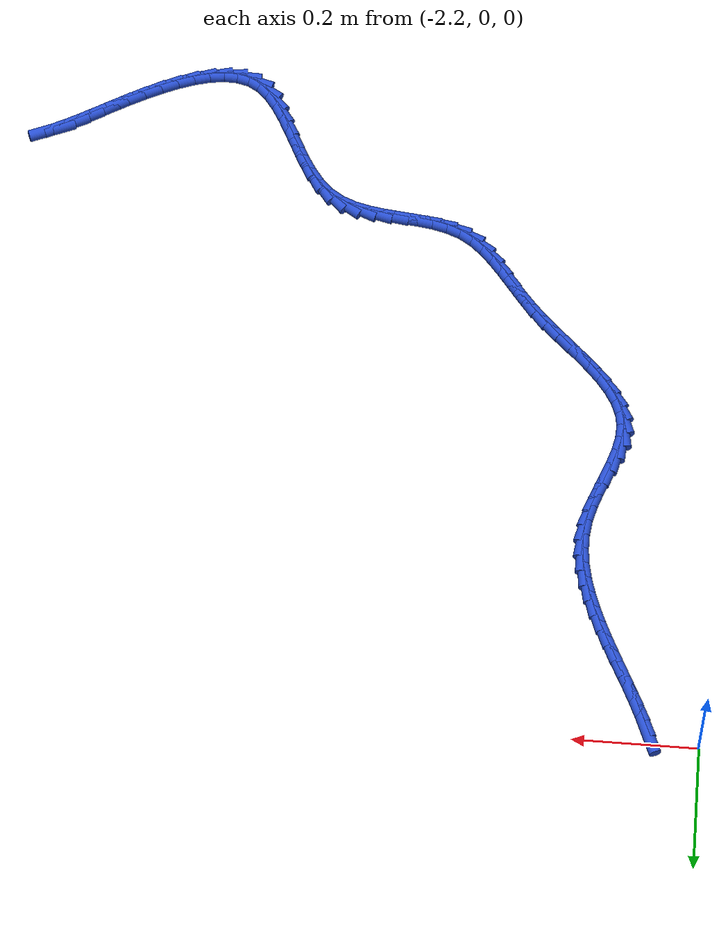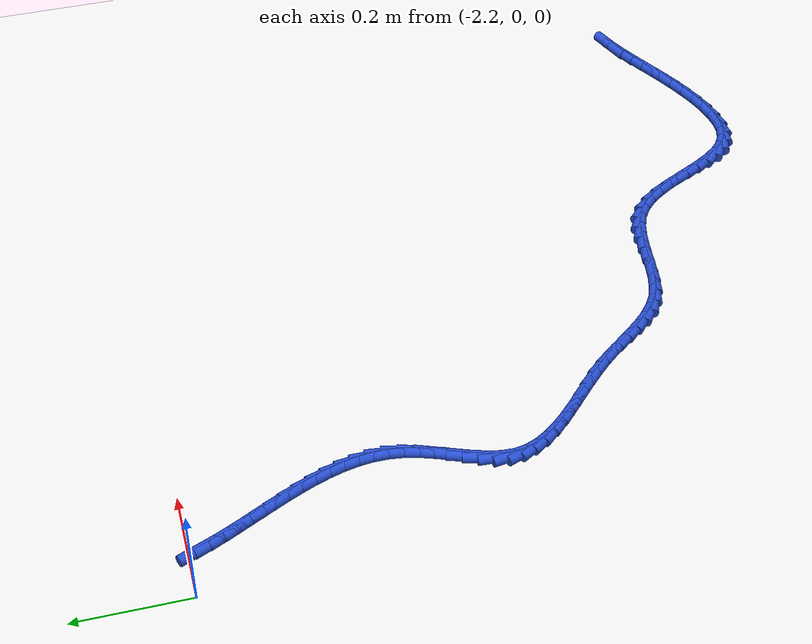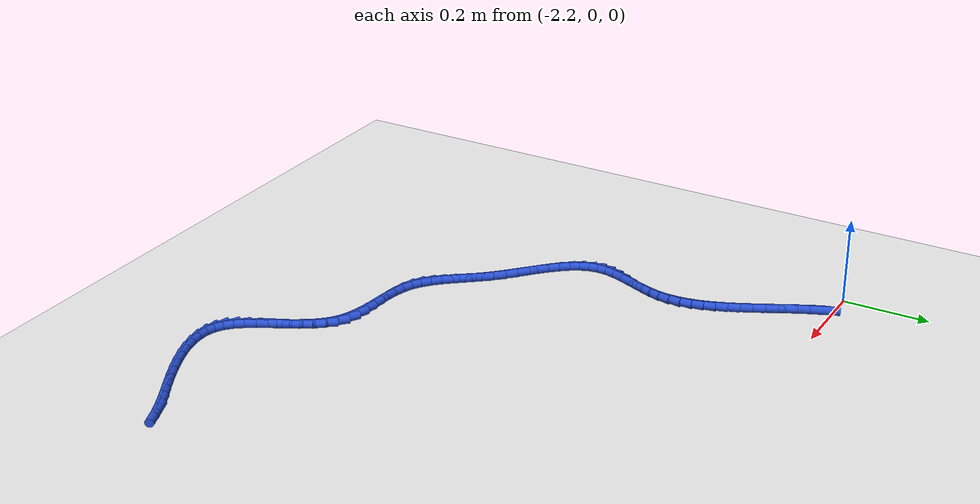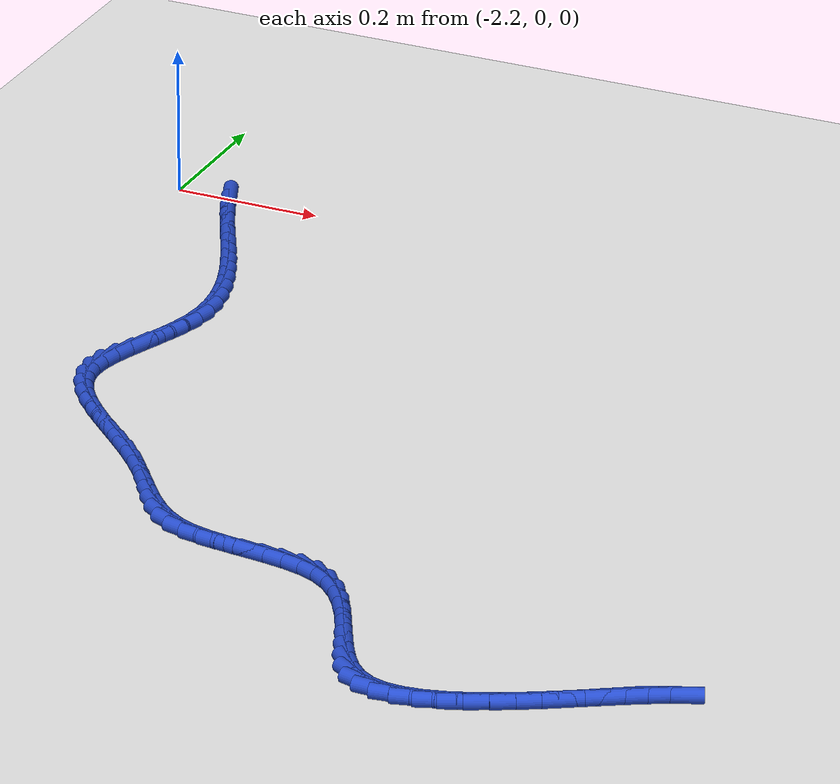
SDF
<sdf version="1.6">
 <world name="default">
  <model name="ground_plane">
   <static>1</static>
   <link name="link">
    <collision name="collision">
     <geometry><plane><normal>0 0 1</normal><size>100 100</size></plane></geometry>
     <surface><friction><ode><mu>100</mu><mu2>50</mu2></ode></friction></surface>
    </collision>
    <visual name="visual">
     <cast_shadows>0</cast_shadows>
     <geometry><plane><normal>0 0 1</normal><size>100 100</size></plane></geometry>
     <material>
      <script><uri>file://media/materials/scripts/gazebo.material</uri><name>Gazebo/WhiteGlow</name></script>
     </material>
    </visual>
   </link>
  </model>
  <model name="line">
   <link name="link_140">
    <pose>-2.116924587599653 -0.020144146588863748 0.01 0 1.57 -1.1843099101000896</pose>
    <collision name="collision">
     <geometry><cylinder><radius>0.01</radius><length>0.08</length></cylinder></geometry>
    </collision>
    <visual name="visual">
     <material>
      <script><name>Gazebo/Blue</name><uri>file://media/materials/scripts/gazebo.material</uri></script>
     </material>
     <geometry><cylinder><radius>0.01</radius><length>0.08</length></cylinder></geometry>
    </visual>
   </link>
   <link name="link_141">
    <pose>-2.106859874034109 -0.044875994419800114 0.01 0 1.57 -1.1458814302333045</pose>
    <collision name="collision">
     <geometry><cylinder><radius>0.01</radius><length>0.08</length></cylinder></geometry>
    </collision>
    <visual name="visual">
     <material>
      <script><name>Gazebo/Blue</name><uri>file://media/materials/scripts/gazebo.material</uri></script>
     </material>
     <geometry><cylinder><radius>0.01</radius><length>0.08</length></cylinder></geometry>
    </visual>
   </link>
   <link name="link_142">
    <pose>-2.095606106394811 -0.06974726429351123 0.01 0 1.57 -1.1209644793495743</pose>
    <collision name="collision">
     <geometry><cylinder><radius>0.01</radius><length>0.08</length></cylinder></geometry>
    </collision>
    <visual name="visual">
     <material>
      <script><name>Gazebo/Blue</name><uri>file://media/materials/scripts/gazebo.material</uri></script>
     </material>
     <geometry><cylinder><radius>0.01</radius><length>0.08</length></cylinder></geometry>
    </visual>
   </link>
   <link name="link_143">
    <pose>-2.0835325813447025 -0.0947520954850006 0.01 0 1.57 -1.1084954516282544</pose>
    <collision name="collision">
     <geometry><cylinder><radius>0.01</radius><length>0.08</length></cylinder></geometry>
    </collision>
    <visual name="visual">
     <material>
      <script><name>Gazebo/Blue</name><uri>file://media/materials/scripts/gazebo.material</uri></script>
     </material>
     <geometry><cylinder><radius>0.01</radius><length>0.08</length></cylinder></geometry>
    </visual>
   </link>
   <link name="link_144">
    <pose>-2.0710085955467266 -0.11988462726927149 0.01 0 1.57 -1.1078470090397563</pose>
    <collision name="collision">
     <geometry><cylinder><radius>0.01</radius><length>0.08</length></cylinder></geometry>
    </collision>
    <visual name="visual">
     <material>
      <script><name>Gazebo/Blue</name><uri>file://media/materials/scripts/gazebo.material</uri></script>
     </material>
     <geometry><cylinder><radius>0.01</radius><length>0.08</length></cylinder></geometry>
    </visual>
   </link>
   <link name="link_145">
    <pose>-2.0584034456638265 -0.1451389989213273 0.01 0 1.57 -1.1188250475977262</pose>
    <collision name="collision">
     <geometry><cylinder><radius>0.01</radius><length>0.08</length></cylinder></geometry>
    </collision>
    <visual name="visual">
     <material>
      <script><name>Gazebo/Blue</name><uri>file://media/materials/scripts/gazebo.material</uri></script>
     </material>
     <geometry><cylinder><radius>0.01</radius><length>0.08</length></cylinder></geometry>
    </visual>
   </link>
   <link name="link_146">
    <pose>-2.0460864283589455 -0.1705093497161722 0.01 0 1.57 -1.1416491543623437</pose>
    <collision name="collision">
     <geometry><cylinder><radius>0.01</radius><length>0.08</length></cylinder></geometry>
    </collision>
    <visual name="visual">
     <material>
      <script><name>Gazebo/Blue</name><uri>file://media/materials/scripts/gazebo.material</uri></script>
     </material>
     <geometry><cylinder><radius>0.01</radius><length>0.08</length></cylinder></geometry>
    </visual>
   </link>
   <link name="link_147">
    <pose>-2.0344268402950263 -0.195989818928808 0.01 0 1.57 -1.176919437674966</pose>
    <collision name="collision">
     <geometry><cylinder><radius>0.01</radius><length>0.08</length></cylinder></geometry>
    </collision>
    <visual name="visual">
     <material>
      <script><name>Gazebo/Blue</name><uri>file://media/materials/scripts/gazebo.material</uri></script>
     </material>
     <geometry><cylinder><radius>0.01</radius><length>0.08</length></cylinder></geometry>
    </visual>
   </link>
   <link name="link_148">
    <pose>-2.023793978135013 -0.2215745458342388 0.01 0 1.57 -1.2255539315403547</pose>
    <collision name="collision">
     <geometry><cylinder><radius>0.01</radius><length>0.08</length></cylinder></geometry>
    </collision>
    <visual name="visual">
     <material>
      <script><name>Gazebo/Blue</name><uri>file://media/materials/scripts/gazebo.material</uri></script>
     </material>
     <geometry><cylinder><radius>0.01</radius><length>0.08</length></cylinder></geometry>
    </visual>
   </link>
   <link name="link_149">
    <pose>-2.0145571385418473 -0.247257669707468 0.01 0 1.57 -1.2886613377516245</pose>
    <collision name="collision">
     <geometry><cylinder><radius>0.01</radius><length>0.08</length></cylinder></geometry>
    </collision>
    <visual name="visual">
     <material>
      <script><name>Gazebo/Blue</name><uri>file://media/materials/scripts/gazebo.material</uri></script>
     </material>
     <geometry><cylinder><radius>0.01</radius><length>0.08</length></cylinder></geometry>
    </visual>
   </link>
   <link name="link_150">
    <pose>-2.0070856181784733 -0.273033329823499 0.01 0 1.57 -1.367294675926565</pose>
    <collision name="collision">
     <geometry><cylinder><radius>0.01</radius><length>0.08</length></cylinder></geometry>
    </collision>
    <visual name="visual">
     <material>
      <script><name>Gazebo/Blue</name><uri>file://media/materials/scripts/gazebo.material</uri></script>
     </material>
     <geometry><cylinder><radius>0.01</radius><length>0.08</length></cylinder></geometry>
    </visual>
   </link>
   <link name="link_151">
    <pose>-2.001748713707834 -0.29889566545733515 0.01 0 1.57 -1.4620273085688147</pose>
    <collision name="collision">
     <geometry><cylinder><radius>0.01</radius><length>0.08</length></cylinder></geometry>
    </collision>
    <visual name="visual">
     <material>
      <script><name>Gazebo/Blue</name><uri>file://media/materials/scripts/gazebo.material</uri></script>
     </material>
     <geometry><cylinder><radius>0.01</radius><length>0.08</length></cylinder></geometry>
    </visual>
   </link>
   <link name="link_152">
    <pose>-1.9989157217928726 -0.3248388158839798 0.01 0 1.57 1.569250584996641</pose>
    <collision name="collision">
     <geometry><cylinder><radius>0.01</radius><length>0.08</length></cylinder></geometry>
    </collision>
    <visual name="visual">
     <material>
      <script><name>Gazebo/Blue</name><uri>file://media/materials/scripts/gazebo.material</uri></script>
     </material>
     <geometry><cylinder><radius>0.01</radius><length>0.08</length></cylinder></geometry>
    </visual>
   </link>
   <link name="link_153">
    <pose>-1.9989559390965317 -0.3508569203784363 0.01 0 1.57 1.4456209961095605</pose>
    <collision name="collision">
     <geometry><cylinder><radius>0.01</radius><length>0.08</length></cylinder></geometry>
    </collision>
    <visual name="visual">
     <material>
      <script><name>Gazebo/Blue</name><uri>file://media/materials/scripts/gazebo.material</uri></script>
     </material>
     <geometry><cylinder><radius>0.01</radius><length>0.08</length></cylinder></geometry>
    </visual>
   </link>
   <link name="link_154">
    <pose>-2.0022385746791587 -0.37694411002050837 0.01 0 1.57 1.3245726861424756</pose>
    <collision name="collision">
     <geometry><cylinder><radius>0.01</radius><length>0.08</length></cylinder></geometry>
    </collision>
    <visual name="visual">
     <material>
      <script><name>Gazebo/Blue</name><uri>file://media/materials/scripts/gazebo.material</uri></script>
     </material>
     <geometry><cylinder><radius>0.01</radius><length>0.08</length></cylinder></geometry>
    </visual>
   </link>
   <link name="link_155">
    <pose>-2.0088030240754997 -0.4030636619221005 0.01 0 1.57 1.2442300955450747</pose>
    <collision name="collision">
     <geometry><cylinder><radius>0.01</radius><length>0.08</length></cylinder></geometry>
    </collision>
    <visual name="visual">
     <material>
      <script><name>Gazebo/Blue</name><uri>file://media/materials/scripts/gazebo.material</uri></script>
     </material>
     <geometry><cylinder><radius>0.01</radius><length>0.08</length></cylinder></geometry>
    </visual>
   </link>
   <link name="link_156">
    <pose>-2.0176139985408867 -0.4290783167656298 0.01 0 1.57 1.2070420112518037</pose>
    <collision name="collision">
     <geometry><cylinder><radius>0.01</radius><length>0.08</length></cylinder></geometry>
    </collision>
    <visual name="visual">
     <material>
      <script><name>Gazebo/Blue</name><uri>file://media/materials/scripts/gazebo.material</uri></script>
     </material>
     <geometry><cylinder><radius>0.01</radius><length>0.08</length></cylinder></geometry>
    </visual>
   </link>
   <link name="link_157">
    <pose>-2.0274176813551166 -0.45483037199932697 0.01 0 1.57 1.2105325163471943</pose>
    <collision name="collision">
     <geometry><cylinder><radius>0.01</radius><length>0.08</length></cylinder></geometry>
    </collision>
    <visual name="visual">
     <material>
      <script><name>Gazebo/Blue</name><uri>file://media/materials/scripts/gazebo.material</uri></script>
     </material>
     <geometry><cylinder><radius>0.01</radius><length>0.08</length></cylinder></geometry>
    </visual>
   </link>
   <link name="link_158">
    <pose>-2.0369602557979865 -0.48016212507142225 0.01 0 1.57 1.2571973638314067</pose>
    <collision name="collision">
     <geometry><cylinder><radius>0.01</radius><length>0.08</length></cylinder></geometry>
    </collision>
    <visual name="visual">
     <material>
      <script><name>Gazebo/Blue</name><uri>file://media/materials/scripts/gazebo.material</uri></script>
     </material>
     <geometry><cylinder><radius>0.01</radius><length>0.08</length></cylinder></geometry>
    </visual>
   </link>
   <link name="link_159">
    <pose>-2.044987905149293 -0.5049158734301454 0.01 0 1.57 1.3552415130608924</pose>
    <collision name="collision">
     <geometry><cylinder><radius>0.01</radius><length>0.08</length></cylinder></geometry>
    </collision>
    <visual name="visual">
     <material>
      <script><name>Gazebo/Blue</name><uri>file://media/materials/scripts/gazebo.material</uri></script>
     </material>
     <geometry><cylinder><radius>0.01</radius><length>0.08</length></cylinder></geometry>
    </visual>
   </link>
   <link name="link_160">
    <pose>-2.050246812688834 -0.5289339145237267 0.01 0 1.57 1.5173825884359322</pose>
    <collision name="collision">
     <geometry><cylinder><radius>0.01</radius><length>0.08</length></cylinder></geometry>
    </collision>
    <visual name="visual">
     <material>
      <script><name>Gazebo/Blue</name><uri>file://media/materials/scripts/gazebo.material</uri></script>
     </material>
     <geometry><cylinder><radius>0.01</radius><length>0.08</length></cylinder></geometry>
    </visual>
   </link>
   <link name="link_161">
    <pose>-2.0514831616964067 -0.5520585458003965 0.01 0 1.57 -1.4044266815169817</pose>
    <collision name="collision">
     <geometry><cylinder><radius>0.01</radius><length>0.08</length></cylinder></geometry>
    </collision>
    <visual name="visual">
     <material>
      <script><name>Gazebo/Blue</name><uri>file://media/materials/scripts/gazebo.material</uri></script>
     </material>
     <geometry><cylinder><radius>0.01</radius><length>0.08</length></cylinder></geometry>
    </visual>
   </link>
   <link name="link_162">
    <pose>-2.047766957267258 -0.5741891106752371 0.01 0 1.57 -1.1987035757381943</pose>
    <collision name="collision">
     <geometry><cylinder><radius>0.01</radius><length>0.08</length></cylinder></geometry>
    </collision>
    <visual name="visual">
     <material>
      <script><name>Gazebo/Blue</name><uri>file://media/materials/scripts/gazebo.material</uri></script>
     </material>
     <geometry><cylinder><radius>0.01</radius><length>0.08</length></cylinder></geometry>
    </visual>
   </link>
   <link name="link_163">
    <pose>-2.0394678863627727 -0.5954539106048147 0.01 0 1.57 -1.0362783756006084</pose>
    <collision name="collision">
     <geometry><cylinder><radius>0.01</radius><length>0.08</length></cylinder></geometry>
    </collision>
    <visual name="visual">
     <material>
      <script><name>Gazebo/Blue</name><uri>file://media/materials/scripts/gazebo.material</uri></script>
     </material>
     <geometry><cylinder><radius>0.01</radius><length>0.08</length></cylinder></geometry>
    </visual>
   </link>
   <link name="link_164">
    <pose>-2.0272816587868387 -0.6160386807557772 0.01 0 1.57 -0.9174985285024179</pose>
    <collision name="collision">
     <geometry><cylinder><radius>0.01</radius><length>0.08</length></cylinder></geometry>
    </collision>
    <visual name="visual">
     <material>
      <script><name>Gazebo/Blue</name><uri>file://media/materials/scripts/gazebo.material</uri></script>
     </material>
     <geometry><cylinder><radius>0.01</radius><length>0.08</length></cylinder></geometry>
    </visual>
   </link>
   <link name="link_165">
    <pose>-2.0119039843438165 -0.6361291562948539 0.01 0 1.57 -0.8360383522564779</pose>
    <collision name="collision">
     <geometry><cylinder><radius>0.01</radius><length>0.08</length></cylinder></geometry>
    </collision>
    <visual name="visual">
     <material>
      <script><name>Gazebo/Blue</name><uri>file://media/materials/scripts/gazebo.material</uri></script>
     </material>
     <geometry><cylinder><radius>0.01</radius><length>0.08</length></cylinder></geometry>
    </visual>
   </link>
   <link name="link_166">
    <pose>-1.9940305728380647 -0.6559110723887761 0.01 0 1.57 -0.7850334030380723</pose>
    <collision name="collision">
     <geometry><cylinder><radius>0.01</radius><length>0.08</length></cylinder></geometry>
    </collision>
    <visual name="visual">
     <material>
      <script><name>Gazebo/Blue</name><uri>file://media/materials/scripts/gazebo.material</uri></script>
     </material>
     <geometry><cylinder><radius>0.01</radius><length>0.08</length></cylinder></geometry>
    </visual>
   </link>
   <link name="link_167">
    <pose>-1.9743571340739414 -0.6755701642042737 0.01 0 1.57 -0.7593359226632841</pose>
    <collision name="collision">
     <geometry><cylinder><radius>0.01</radius><length>0.08</length></cylinder></geometry>
    </collision>
    <visual name="visual">
     <material>
      <script><name>Gazebo/Blue</name><uri>file://media/materials/scripts/gazebo.material</uri></script>
     </material>
     <geometry><cylinder><radius>0.01</radius><length>0.08</length></cylinder></geometry>
    </visual>
   </link>
   <link name="link_168">
    <pose>-1.9535793778558037 -0.6952921669080769 0.01 0 1.57 -0.7558682816750472</pose>
    <collision name="collision">
     <geometry><cylinder><radius>0.01</radius><length>0.08</length></cylinder></geometry>
    </collision>
    <visual name="visual">
     <material>
      <script><name>Gazebo/Blue</name><uri>file://media/materials/scripts/gazebo.material</uri></script>
     </material>
     <geometry><cylinder><radius>0.01</radius><length>0.08</length></cylinder></geometry>
    </visual>
   </link>
   <link name="link_169">
    <pose>-1.9323930139880106 -0.7152628156669164 0.01 0 1.57 -0.7734331077861696</pose>
    <collision name="collision">
     <geometry><cylinder><radius>0.01</radius><length>0.08</length></cylinder></geometry>
    </collision>
    <visual name="visual">
     <material>
      <script><name>Gazebo/Blue</name><uri>file://media/materials/scripts/gazebo.material</uri></script>
     </material>
     <geometry><cylinder><radius>0.01</radius><length>0.08</length></cylinder></geometry>
    </visual>
   </link>
   <link name="link_170">
    <pose>-1.9114937522749207 -0.7356678456475223 0.01 0 1.57 -0.8124715026888439</pose>
    <collision name="collision">
     <geometry><cylinder><radius>0.01</radius><length>0.08</length></cylinder></geometry>
    </collision>
    <visual name="visual">
     <material>
      <script><name>Gazebo/Blue</name><uri>file://media/materials/scripts/gazebo.material</uri></script>
     </material>
     <geometry><cylinder><radius>0.01</radius><length>0.08</length></cylinder></geometry>
    </visual>
   </link>
   <link name="link_171">
    <pose>-1.891577302520892 -0.7566929920166248 0.01 0 1.57 -0.8675885991762724</pose>
    <collision name="collision">
     <geometry><cylinder><radius>0.01</radius><length>0.08</length></cylinder></geometry>
    </collision>
    <visual name="visual">
     <material>
      <script><name>Gazebo/Blue</name><uri>file://media/materials/scripts/gazebo.material</uri></script>
     </material>
     <geometry><cylinder><radius>0.01</radius><length>0.08</length></cylinder></geometry>
    </visual>
   </link>
   <link name="link_172">
    <pose>-1.8731661817268386 -0.7784096817319225 0.01 0 1.57 -0.9039009746236367</pose>
    <collision name="collision">
     <geometry><cylinder><radius>0.01</radius><length>0.08</length></cylinder></geometry>
    </collision>
    <visual name="visual">
     <material>
      <script><name>Gazebo/Blue</name><uri>file://media/materials/scripts/gazebo.material</uri></script>
     </material>
     <geometry><cylinder><radius>0.01</radius><length>0.08</length></cylinder></geometry>
    </visual>
   </link>
   <link name="link_173">
    <pose>-1.8559188367353698 -0.8003190506633241 0.01 0 1.57 -0.9088920725525416</pose>
    <collision name="collision">
     <geometry><cylinder><radius>0.01</radius><length>0.08</length></cylinder></geometry>
    </collision>
    <visual name="visual">
     <material>
      <script><name>Gazebo/Blue</name><uri>file://media/materials/scripts/gazebo.material</uri></script>
     </material>
     <geometry><cylinder><radius>0.01</radius><length>0.08</length></cylinder></geometry>
    </visual>
   </link>
   <link name="link_174">
    <pose>-1.839224782978542 -0.8217447384610236 0.01 0 1.57 -0.8800509526377707</pose>
    <collision name="collision">
     <geometry><cylinder><radius>0.01</radius><length>0.08</length></cylinder></geometry>
    </collision>
    <visual name="visual">
     <material>
      <script><name>Gazebo/Blue</name><uri>file://media/materials/scripts/gazebo.material</uri></script>
     </material>
     <geometry><cylinder><radius>0.01</radius><length>0.08</length></cylinder></geometry>
    </visual>
   </link>
   <link name="link_175">
    <pose>-1.822473449713568 -0.842010327899344 0.01 0 1.57 -0.8135619677875251</pose>
    <collision name="collision">
     <geometry><cylinder><radius>0.01</radius><length>0.08</length></cylinder></geometry>
    </collision>
    <visual name="visual">
     <material>
      <script><name>Gazebo/Blue</name><uri>file://media/materials/scripts/gazebo.material</uri></script>
     </material>
     <geometry><cylinder><radius>0.01</radius><length>0.08</length></cylinder></geometry>
    </visual>
   </link>
   <link name="link_176">
    <pose>-1.8050542661976599 -0.8604394017526075 0.01 0 1.57 -0.705213265261377</pose>
    <collision name="collision">
     <geometry><cylinder><radius>0.01</radius><length>0.08</length></cylinder></geometry>
    </collision>
    <visual name="visual">
     <material>
      <script><name>Gazebo/Blue</name><uri>file://media/materials/scripts/gazebo.material</uri></script>
     </material>
     <geometry><cylinder><radius>0.01</radius><length>0.08</length></cylinder></geometry>
    </visual>
   </link>
   <link name="link_177">
    <pose>-1.786356661688032 -0.8763555427951365 0.01 0 1.57 -0.5537000017337284</pose>
    <collision name="collision">
     <geometry><cylinder><radius>0.01</radius><length>0.08</length></cylinder></geometry>
    </collision>
    <visual name="visual">
     <material>
      <script><name>Gazebo/Blue</name><uri>file://media/materials/scripts/gazebo.material</uri></script>
     </material>
     <geometry><cylinder><radius>0.01</radius><length>0.08</length></cylinder></geometry>
    </visual>
   </link>
   <link name="link_178">
    <pose>-1.7657700654418975 -0.889082333801253 0.01 0 1.57 -0.37482374110957295</pose>
    <collision name="collision">
     <geometry><cylinder><radius>0.01</radius><length>0.08</length></cylinder></geometry>
    </collision>
    <visual name="visual">
     <material>
      <script><name>Gazebo/Blue</name><uri>file://media/materials/scripts/gazebo.material</uri></script>
     </material>
     <geometry><cylinder><radius>0.01</radius><length>0.08</length></cylinder></geometry>
    </visual>
   </link>
   <link name="link_179">
    <pose>-1.7428101472089272 -0.898115294200619 0.01 0 1.57 -0.23342235786094598</pose>
    <collision name="collision">
     <geometry><cylinder><radius>0.01</radius><length>0.08</length></cylinder></geometry>
    </collision>
    <visual name="visual">
     <material>
      <script><name>Gazebo/Blue</name><uri>file://media/materials/scripts/gazebo.material</uri></script>
     </material>
     <geometry><cylinder><radius>0.01</radius><length>0.08</length></cylinder></geometry>
    </visual>
   </link>
   <link name="link_180">
    <pose>-1.7178074873230191 -0.9040598329482306 0.01 0 1.57 -0.14680216672629712</pose>
    <collision name="collision">
     <geometry><cylinder><radius>0.01</radius><length>0.08</length></cylinder></geometry>
    </collision>
    <visual name="visual">
     <material>
      <script><name>Gazebo/Blue</name><uri>file://media/materials/scripts/gazebo.material</uri></script>
     </material>
     <geometry><cylinder><radius>0.01</radius><length>0.08</length></cylinder></geometry>
    </visual>
   </link>
   <link name="link_181">
    <pose>-1.691416332410643 -0.9079621850661213 0.01 0 1.57 -0.10678353407797177</pose>
    <collision name="collision">
     <geometry><cylinder><radius>0.01</radius><length>0.08</length></cylinder></geometry>
    </collision>
    <visual name="visual">
     <material>
      <script><name>Gazebo/Blue</name><uri>file://media/materials/scripts/gazebo.material</uri></script>
     </material>
     <geometry><cylinder><radius>0.01</radius><length>0.08</length></cylinder></geometry>
    </visual>
   </link>
   <link name="link_182">
    <pose>-1.6642917498841596 -0.9108697034678773 0.01 0 1.57 -0.10838670474836402</pose>
    <collision name="collision">
     <geometry><cylinder><radius>0.01</radius><length>0.08</length></cylinder></geometry>
    </collision>
    <visual name="visual">
     <material>
      <script><name>Gazebo/Blue</name><uri>file://media/materials/scripts/gazebo.material</uri></script>
     </material>
     <geometry><cylinder><radius>0.01</radius><length>0.08</length></cylinder></geometry>
    </visual>
   </link>
   <link name="link_183">
    <pose>-1.6370888071559258 -0.9138297410670853 0.01 0 1.57 -0.15131233482629494</pose>
    <collision name="collision">
     <geometry><cylinder><radius>0.01</radius><length>0.08</length></cylinder></geometry>
    </collision>
    <visual name="visual">
     <material>
      <script><name>Gazebo/Blue</name><uri>file://media/materials/scripts/gazebo.material</uri></script>
     </material>
     <geometry><cylinder><radius>0.01</radius><length>0.08</length></cylinder></geometry>
    </visual>
   </link>
   <link name="link_184">
    <pose>-1.6104625716382996 -0.9178896507773311 0.01 0 1.57 -0.23972823988811684</pose>
    <collision name="collision">
     <geometry><cylinder><radius>0.01</radius><length>0.08</length></cylinder></geometry>
    </collision>
    <visual name="visual">
     <material>
      <script><name>Gazebo/Blue</name><uri>file://media/materials/scripts/gazebo.material</uri></script>
     </material>
     <geometry><cylinder><radius>0.01</radius><length>0.08</length></cylinder></geometry>
    </visual>
   </link>
   <link name="link_185">
    <pose>-1.585068110743639 -0.924096785512201 0.01 0 1.57 -0.3804574239154289</pose>
    <collision name="collision">
     <geometry><cylinder><radius>0.01</radius><length>0.08</length></cylinder></geometry>
    </collision>
    <visual name="visual">
     <material>
      <script><name>Gazebo/Blue</name><uri>file://media/materials/scripts/gazebo.material</uri></script>
     </material>
     <geometry><cylinder><radius>0.01</radius><length>0.08</length></cylinder></geometry>
    </visual>
   </link>
   <link name="link_186">
    <pose>-1.5615604918843031 -0.933498498185282 0.01 0 1.57 -0.5761580086915304</pose>
    <collision name="collision">
     <geometry><cylinder><radius>0.01</radius><length>0.08</length></cylinder></geometry>
    </collision>
    <visual name="visual">
     <material>
      <script><name>Gazebo/Blue</name><uri>file://media/materials/scripts/gazebo.material</uri></script>
     </material>
     <geometry><cylinder><radius>0.01</radius><length>0.08</length></cylinder></geometry>
    </visual>
   </link>
   <link name="link_187">
    <pose>-1.5405853939223049 -0.9471258318072401 0.01 0 1.57 -0.7797769756939169</pose>
    <collision name="collision">
     <geometry><cylinder><radius>0.01</radius><length>0.08</length></cylinder></geometry>
    </collision>
    <visual name="visual">
     <material>
      <script><name>Gazebo/Blue</name><uri>file://media/materials/scripts/gazebo.material</uri></script>
     </material>
     <geometry><cylinder><radius>0.01</radius><length>0.08</length></cylinder></geometry>
    </visual>
   </link>
   <link name="link_188">
    <pose>-1.5223167249256824 -0.9651902634740309 0.01 0 1.57 -0.9294873721788075</pose>
    <collision name="collision">
     <geometry><cylinder><radius>0.01</radius><length>0.08</length></cylinder></geometry>
    </collision>
    <visual name="visual">
     <material>
      <script><name>Gazebo/Blue</name><uri>file://media/materials/scripts/gazebo.material</uri></script>
     </material>
     <geometry><cylinder><radius>0.01</radius><length>0.08</length></cylinder></geometry>
    </visual>
   </link>
   <link name="link_189">
    <pose>-1.5062454261562475 -0.9867168121065701 0.01 0 1.57 -1.027800750272645</pose>
    <collision name="collision">
     <geometry><cylinder><radius>0.01</radius><length>0.08</length></cylinder></geometry>
    </collision>
    <visual name="visual">
     <material>
      <script><name>Gazebo/Blue</name><uri>file://media/materials/scripts/gazebo.material</uri></script>
     </material>
     <geometry><cylinder><radius>0.01</radius><length>0.08</length></cylinder></geometry>
    </visual>
   </link>
   <link name="link_190">
    <pose>-1.4918089904759686 -1.010637645420768 0.01 0 1.57 -1.0839630045205835</pose>
    <collision name="collision">
     <geometry><cylinder><radius>0.01</radius><length>0.08</length></cylinder></geometry>
    </collision>
    <visual name="visual">
     <material>
      <script><name>Gazebo/Blue</name><uri>file://media/materials/scripts/gazebo.material</uri></script>
     </material>
     <geometry><cylinder><radius>0.01</radius><length>0.08</length></cylinder></geometry>
    </visual>
   </link>
   <link name="link_191">
    <pose>-1.4784449107468165 -1.0358849311325324 0.01 0 1.57 -1.1039771524430384</pose>
    <collision name="collision">
     <geometry><cylinder><radius>0.01</radius><length>0.08</length></cylinder></geometry>
    </collision>
    <visual name="visual">
     <material>
      <script><name>Gazebo/Blue</name><uri>file://media/materials/scripts/gazebo.material</uri></script>
     </material>
     <geometry><cylinder><radius>0.01</radius><length>0.08</length></cylinder></geometry>
    </visual>
   </link>
   <link name="link_192">
    <pose>-1.4655906798307594 -1.0613908369577747 0.01 0 1.57 -1.0892199830452332</pose>
    <collision name="collision">
     <geometry><cylinder><radius>0.01</radius><length>0.08</length></cylinder></geometry>
    </collision>
    <visual name="visual">
     <material>
      <script><name>Gazebo/Blue</name><uri>file://media/materials/scripts/gazebo.material</uri></script>
     </material>
     <geometry><cylinder><radius>0.01</radius><length>0.08</length></cylinder></geometry>
    </visual>
   </link>
   <link name="link_193">
    <pose>-1.4526837905897672 -1.0860875306124038 0.01 0 1.57 -1.035863968406905</pose>
    <collision name="collision">
     <geometry><cylinder><radius>0.01</radius><length>0.08</length></cylinder></geometry>
    </collision>
    <visual name="visual">
     <material>
      <script><name>Gazebo/Blue</name><uri>file://media/materials/scripts/gazebo.material</uri></script>
     </material>
     <geometry><cylinder><radius>0.01</radius><length>0.08</length></cylinder></geometry>
    </visual>
   </link>
   <link name="link_194">
    <pose>-1.4391617358858084 -1.10890717981233 0.01 0 1.57 -0.9339732716807818</pose>
    <collision name="collision">
     <geometry><cylinder><radius>0.01</radius><length>0.08</length></cylinder></geometry>
    </collision>
    <visual name="visual">
     <material>
      <script><name>Gazebo/Blue</name><uri>file://media/materials/scripts/gazebo.material</uri></script>
     </material>
     <geometry><cylinder><radius>0.01</radius><length>0.08</length></cylinder></geometry>
    </visual>
   </link>
   <link name="link_195">
    <pose>-1.424462008580853 -1.1287819522734626 0.01 0 1.57 -0.7675112676291928</pose>
    <collision name="collision">
     <geometry><cylinder><radius>0.01</radius><length>0.08</length></cylinder></geometry>
    </collision>
    <visual name="visual">
     <material>
      <script><name>Gazebo/Blue</name><uri>file://media/materials/scripts/gazebo.material</uri></script>
     </material>
     <geometry><cylinder><radius>0.01</radius><length>0.08</length></cylinder></geometry>
    </visual>
   </link>
   <link name="link_196">
    <pose>-1.4080221015368695 -1.144644015711712 0.01 0 1.57 -0.5233315372946078</pose>
    <collision name="collision">
     <geometry><cylinder><radius>0.01</radius><length>0.08</length></cylinder></geometry>
    </collision>
    <visual name="visual">
     <material>
      <script><name>Gazebo/Blue</name><uri>file://media/materials/scripts/gazebo.material</uri></script>
     </material>
     <geometry><cylinder><radius>0.01</radius><length>0.08</length></cylinder></geometry>
    </visual>
   </link>
   <link name="link_197">
    <pose>-1.3892936358550294 -1.1554502281594023 0.01 0 1.57 -0.25285700365248687</pose>
    <collision name="collision">
     <geometry><cylinder><radius>0.01</radius><length>0.08</length></cylinder></geometry>
    </collision>
    <visual name="visual">
     <material>
      <script><name>Gazebo/Blue</name><uri>file://media/materials/scripts/gazebo.material</uri></script>
     </material>
     <geometry><cylinder><radius>0.01</radius><length>0.08</length></cylinder></geometry>
    </visual>
   </link>
   <link name="link_198">
    <pose>-1.3681594494766693 -1.1609110362649155 0.01 0 1.57 -0.03021146007965573</pose>
    <collision name="collision">
     <geometry><cylinder><radius>0.01</radius><length>0.08</length></cylinder></geometry>
    </collision>
    <visual name="visual">
     <material>
      <script><name>Gazebo/Blue</name><uri>file://media/materials/scripts/gazebo.material</uri></script>
     </material>
     <geometry><cylinder><radius>0.01</radius><length>0.08</length></cylinder></geometry>
    </visual>
   </link>
   <link name="link_199">
    <pose>-1.3450024806171803 -1.1616108550338728 0.01 0 1.57 0.1375192110313337</pose>
    <collision name="collision">
     <geometry><cylinder><radius>0.01</radius><length>0.08</length></cylinder></geometry>
    </collision>
    <visual name="visual">
     <material>
      <script><name>Gazebo/Blue</name><uri>file://media/materials/scripts/gazebo.material</uri></script>
     </material>
     <geometry><cylinder><radius>0.01</radius><length>0.08</length></cylinder></geometry>
    </visual>
   </link>
   <link name="link_200">
    <pose>-1.3202336673366672 -1.1581830316152186 0.01 0 1.57 0.26048950143779764</pose>
    <collision name="collision">
     <geometry><cylinder><radius>0.01</radius><length>0.08</length></cylinder></geometry>
    </collision>
    <visual name="visual">
     <material>
      <script><name>Gazebo/Blue</name><uri>file://media/materials/scripts/gazebo.material</uri></script>
     </material>
     <geometry><cylinder><radius>0.01</radius><length>0.08</length></cylinder></geometry>
    </visual>
   </link>
   <link name="link_201">
    <pose>-1.2942639476952327 -1.1512609131578972 0.01 0 1.57 0.3504951317173672</pose>
    <collision name="collision">
     <geometry><cylinder><radius>0.01</radius><length>0.08</length></cylinder></geometry>
    </collision>
    <visual name="visual">
     <material>
      <script><name>Gazebo/Blue</name><uri>file://media/materials/scripts/gazebo.material</uri></script>
     </material>
     <geometry><cylinder><radius>0.01</radius><length>0.08</length></cylinder></geometry>
    </visual>
   </link>
   <link name="link_202">
    <pose>-1.2675042597529798 -1.141477846810853 0.01 0 1.57 0.41665442712837597</pose>
    <collision name="collision">
     <geometry><cylinder><radius>0.01</radius><length>0.08</length></cylinder></geometry>
    </collision>
    <visual name="visual">
     <material>
      <script><name>Gazebo/Blue</name><uri>file://media/materials/scripts/gazebo.material</uri></script>
     </material>
     <geometry><cylinder><radius>0.01</radius><length>0.08</length></cylinder></geometry>
    </visual>
   </link>
   <link name="link_203">
    <pose>-1.240365541570013 -1.1294671797230302 0.01 0 1.57 0.46516682357447986</pose>
    <collision name="collision">
     <geometry><cylinder><radius>0.01</radius><length>0.08</length></cylinder></geometry>
    </collision>
    <visual name="visual">
     <material>
      <script><name>Gazebo/Blue</name><uri>file://media/materials/scripts/gazebo.material</uri></script>
     </material>
     <geometry><cylinder><radius>0.01</radius><length>0.08</length></cylinder></geometry>
    </visual>
   </link>
   <link name="link_204">
    <pose>-1.2132587312064345 -1.1158622590433729 0.01 0 1.57 0.49997795969683007</pose>
    <collision name="collision">
     <geometry><cylinder><radius>0.01</radius><length>0.08</length></cylinder></geometry>
    </collision>
    <visual name="visual">
     <material>
      <script><name>Gazebo/Blue</name><uri>file://media/materials/scripts/gazebo.material</uri></script>
     </material>
     <geometry><cylinder><radius>0.01</radius><length>0.08</length></cylinder></geometry>
    </visual>
   </link>
   <link name="link_205">
    <pose>-1.186594766722348 -1.1012964319208252 0.01 0 1.57 0.5233584260010706</pose>
    <collision name="collision">
     <geometry><cylinder><radius>0.01</radius><length>0.08</length></cylinder></geometry>
    </collision>
    <visual name="visual">
     <material>
      <script><name>Gazebo/Blue</name><uri>file://media/materials/scripts/gazebo.material</uri></script>
     </material>
     <geometry><cylinder><radius>0.01</radius><length>0.08</length></cylinder></geometry>
    </visual>
   </link>
   <link name="link_206">
    <pose>-1.160783922565346 -1.0864028044526144 0.01 0 1.57 0.534866704216106</pose>
    <collision name="collision">
     <geometry><cylinder><radius>0.01</radius><length>0.08</length></cylinder></geometry>
    </collision>
    <visual name="visual">
     <material>
      <script><name>Gazebo/Blue</name><uri>file://media/materials/scripts/gazebo.material</uri></script>
     </material>
     <geometry><cylinder><radius>0.01</radius><length>0.08</length></cylinder></geometry>
    </visual>
   </link>
   <link name="link_207">
    <pose>-1.1360418406803319 -1.0717437841005357 0.01 0 1.57 0.5304467748427648</pose>
    <collision name="collision">
     <geometry><cylinder><radius>0.01</radius><length>0.08</length></cylinder></geometry>
    </collision>
    <visual name="visual">
     <material>
      <script><name>Gazebo/Blue</name><uri>file://media/materials/scripts/gazebo.material</uri></script>
     </material>
     <geometry><cylinder><radius>0.01</radius><length>0.08</length></cylinder></geometry>
    </visual>
   </link>
   <link name="link_208">
    <pose>-1.112119842382564 -1.0577131177251733 0.01 0 1.57 0.5078480770508914</pose>
    <collision name="collision">
     <geometry><cylinder><radius>0.01</radius><length>0.08</length></cylinder></geometry>
    </collision>
    <visual name="visual">
     <material>
      <script><name>Gazebo/Blue</name><uri>file://media/materials/scripts/gazebo.material</uri></script>
     </material>
     <geometry><cylinder><radius>0.01</radius><length>0.08</length></cylinder></geometry>
    </visual>
   </link>
   <link name="link_209">
    <pose>-1.0887014822367234 -1.04467993647942 0.01 0 1.57 0.46540168301581064</pose>
    <collision name="collision">
     <geometry><cylinder><radius>0.01</radius><length>0.08</length></cylinder></geometry>
    </collision>
    <visual name="visual">
     <material>
      <script><name>Gazebo/Blue</name><uri>file://media/materials/scripts/gazebo.material</uri></script>
     </material>
     <geometry><cylinder><radius>0.01</radius><length>0.08</length></cylinder></geometry>
    </visual>
   </link>
   <link name="link_210">
    <pose>-1.065470314807489 -1.0330133715161678 0.01 0 1.57 0.4019663279193843</pose>
    <collision name="collision">
     <geometry><cylinder><radius>0.01</radius><length>0.08</length></cylinder></geometry>
    </collision>
    <visual name="visual">
     <material>
      <script><name>Gazebo/Blue</name><uri>file://media/materials/scripts/gazebo.material</uri></script>
     </material>
     <geometry><cylinder><radius>0.01</radius><length>0.08</length></cylinder></geometry>
    </visual>
   </link>
  </model>
 </world>
</sdf>
